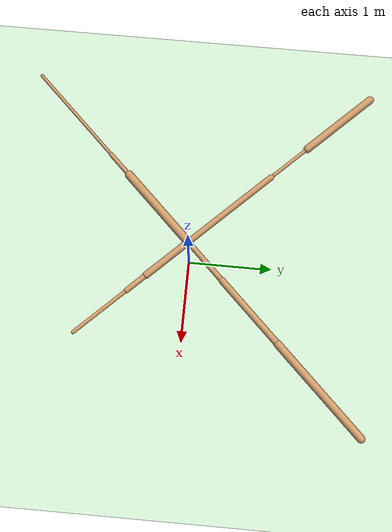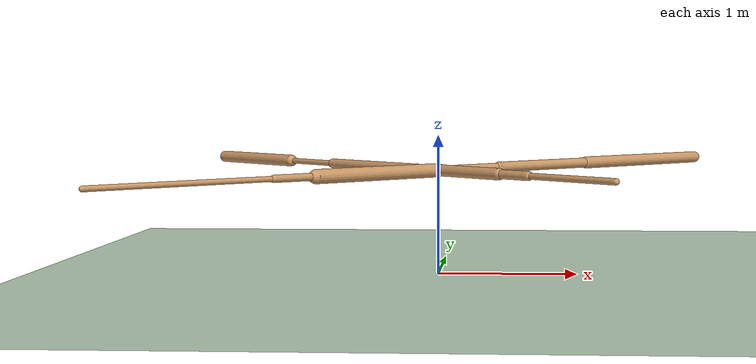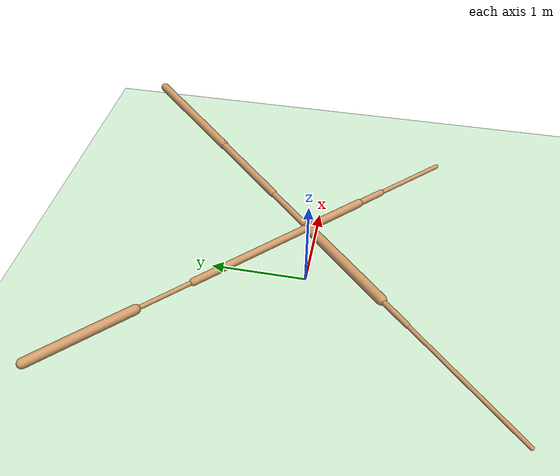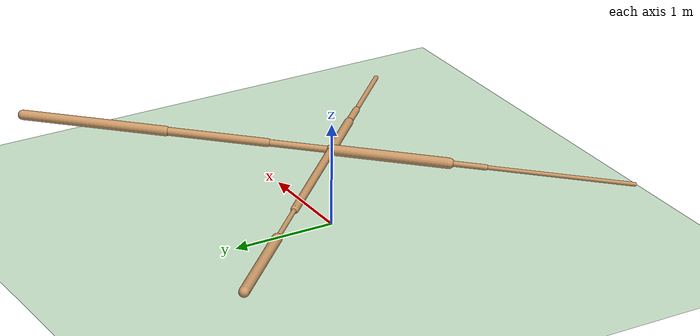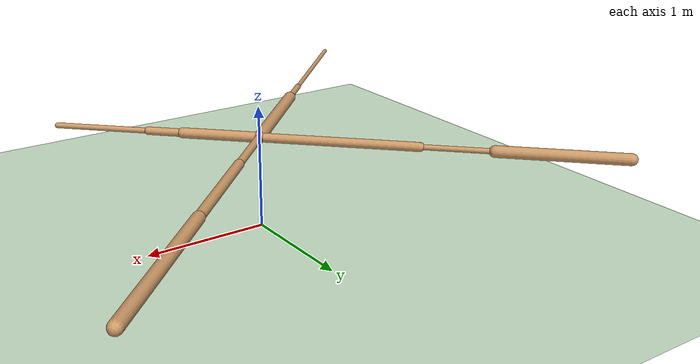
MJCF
<mujoco model="ant">
  <compiler angle="degree" coordinate="local" inertiafromgeom="true" />
  <option integrator="RK4" timestep="0.01" />
  <custom>
    <numeric data="0.0 0.0 0.55 1.0 0.0 0.0 0.0 0.0 1.0 0.0 -1.0 0.0 -1.0 0.0 1.0" name="init_qpos" />
  </custom>
  <default>
    <joint armature="1" damping="1" limited="true" />
    <geom conaffinity="0" condim="3" density="5.0" friction="1 0.5 0.5" margin="0.01" rgba="0.8 0.6 0.4 1" />
  </default>
  <asset>
    <texture builtin="gradient" height="100" rgb1="1 1 1" rgb2="0 0 0" type="skybox" width="100" />
    <texture builtin="flat" height="1278" mark="cross" markrgb="1 1 1" name="texgeom" random="0.01" rgb1="0.8 0.6 0.4" rgb2="0.8 0.6 0.4" type="cube" width="127" />
    <texture builtin="checker" height="100" name="texplane" rgb1="0 0 0" rgb2="0.8 0.8 0.8" type="2d" width="100" />
    <material name="MatPlane" reflectance="0.5" shininess="1" specular="1" texrepeat="60 60" texture="texplane" />
    <material name="geom" texture="texgeom" texuniform="true" />
  </asset>
  <worldbody>
    <light cutoff="100" diffuse="1 1 1" dir="-0 0 -1.3" directional="true" exponent="1" pos="0 0 1.3" specular=".1 .1 .1" />
    <geom conaffinity="1" condim="3" material="MatPlane" name="floor" pos="0 0 0" rgba="0.8 0.9 0.8 1" size="40 40 40" type="plane" />
    <body name="torso" pos="0 0 0.75">
      <camera name="track" mode="trackcom" pos="0 -11 5" xyaxes="1 0 0 0 0.5 1" />
      <geom name="torso_geom" pos="0 0 0" size="0.020747775211930275" type="sphere" />
      <joint armature="0" damping="0" limited="false" margin="0.01" name="root" pos="0 0 0" type="free" />
      <body name="front_left_leg" pos="0 0 0">
        <geom fromto="0 0 0 0.42663392424583435 0.42663392424583435 0" name="aux_1_geom" size="0.03144090250134468" type="capsule" />
        <body name="aux_1" pos="0.42663392424583435 0.42663392424583435 0">
          <joint axis="0 0 1" name="hip_1" pos="0.0 0.0 0.0" range="-30 30" type="hinge" />
          <geom fromto="0 0 0 0.6892192363739014 0.6892192363739014 0" name="left_leg_geom" size="0.03900083899497986" type="capsule" />
          <body name="left_leg_geom_aux" pos="0.6892192363739014 0.6892192363739014 0">
            <joint axis="-1 1 0" name="ankle_1" pos="0.0 0.0 0.0" range="30 70" type="hinge" />
            <geom fromto="0 0 0 0.9880125522613525 0.9880125522613525 0" name="left_ankle_geom" size="0.04658636450767517" type="capsule" />
          </body>
        </body>
      </body>
      <body name="front_right_leg" pos="0 0 0">
        <geom fromto="0 0 0 -0.8890181183815002 0.8890181183815002 0" name="aux_2_geom" size="0.03680776059627533" type="capsule" />
        <body name="aux_2" pos="-0.8890181183815002 0.8890181183815002 0">
          <joint axis="0 0 1" name="hip_2" pos="0.0 0.0 0.0" range="-30 30" type="hinge" />
          <geom fromto="0 0 0 -0.40124472975730896 0.40124472975730896 0" name="right_leg_geom" size="0.02151763066649437" type="capsule" />
          <body name="right_leg_geom_aux" pos="-0.40124472975730896 0.40124472975730896 0">
            <joint axis="1 1 0" name="ankle_2" pos="0.0 0.0 0.0" range="-70 -30" type="hinge" />
            <geom fromto="0 0 0 -0.7035574913024902 0.7035574913024902 0" name="right_ankle_geom" size="0.04678536206483841" type="capsule" />
          </body>
        </body>
      </body>
      <body name="back_leg" pos="0 0 0">
        <geom fromto="0 0 0 -0.7706936001777649 -0.7706936001777649 0" name="aux_3_geom" size="0.04992896318435669" type="capsule" />
        <body name="aux_3" pos="-0.7706936001777649 -0.7706936001777649 0">
          <joint axis="0 0 1" name="hip_3" pos="0.0 0.0 0.0" range="-30 30" type="hinge" />
          <geom fromto="0 0 0 -0.23884332180023193 -0.23884332180023193 0" name="back_leg_geom" size="0.026002492755651474" type="capsule" />
          <body name="back_leg_geom_aux" pos="-0.23884332180023193 -0.23884332180023193 0">
            <joint axis="-1 1 0" name="ankle_3" pos="0.0 0.0 0.0" range="-70 -30" type="hinge" />
            <geom fromto="0 0 0 -0.9474607110023499 -0.9474607110023499 0" name="third_ankle_geom" size="0.018804823979735374" type="capsule" />
          </body>
        </body>
      </body>
      <body name="right_back_leg" pos="0 0 0">
        <geom fromto="0 0 0 0.44253450632095337 -0.44253450632095337 0" name="aux_4_geom" size="0.04189632833003998" type="capsule" />
        <body name="aux_4" pos="0.44253450632095337 -0.44253450632095337 0">
          <joint axis="0 0 1" name="hip_4" pos="0.0 0.0 0.0" range="-30 30" type="hinge" />
          <geom fromto="0 0 0 0.20180195569992065 -0.20180195569992065 0" name="rightback_leg_geom" size="0.03212951496243477" type="capsule" />
          <body name="rightback_leg_geom_aux" pos="0.20180195569992065 -0.20180195569992065 0">
            <joint axis="1 1 0" name="ankle_4" pos="0.0 0.0 0.0" range="30 70" type="hinge" />
            <geom fromto="0 0 0 0.543621301651001 -0.543621301651001 0" name="fourth_ankle_geom" size="0.02253643050789833" type="capsule" />
          </body>
        </body>
      </body>
    </body>
  </worldbody>
  <actuator>
    <motor ctrllimited="true" ctrlrange="-1.0 1.0" joint="hip_4" gear="150" />
    <motor ctrllimited="true" ctrlrange="-1.0 1.0" joint="ankle_4" gear="150" />
    <motor ctrllimited="true" ctrlrange="-1.0 1.0" joint="hip_1" gear="150" />
    <motor ctrllimited="true" ctrlrange="-1.0 1.0" joint="ankle_1" gear="150" />
    <motor ctrllimited="true" ctrlrange="-1.0 1.0" joint="hip_2" gear="150" />
    <motor ctrllimited="true" ctrlrange="-1.0 1.0" joint="ankle_2" gear="150" />
    <motor ctrllimited="true" ctrlrange="-1.0 1.0" joint="hip_3" gear="150" />
    <motor ctrllimited="true" ctrlrange="-1.0 1.0" joint="ankle_3" gear="150" />
  </actuator>
</mujoco>
